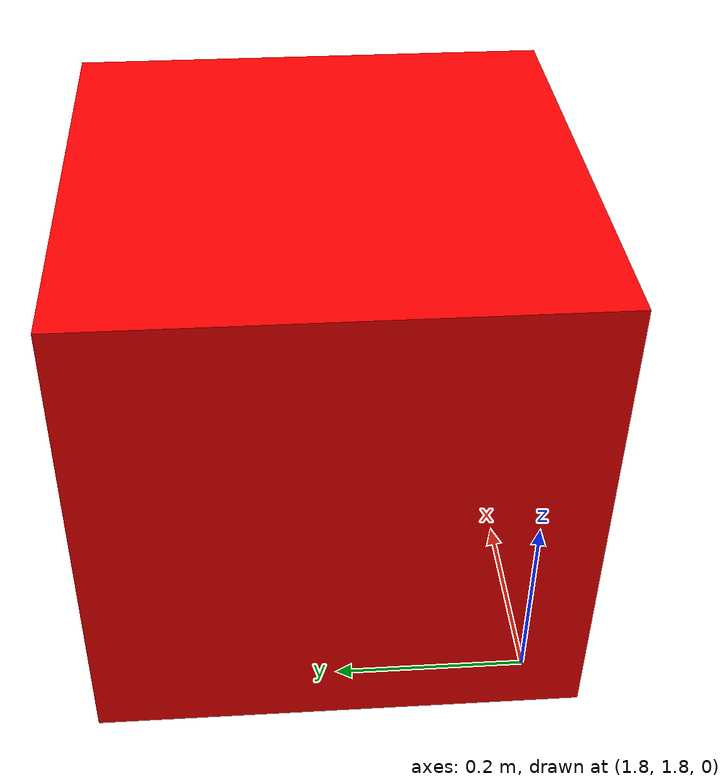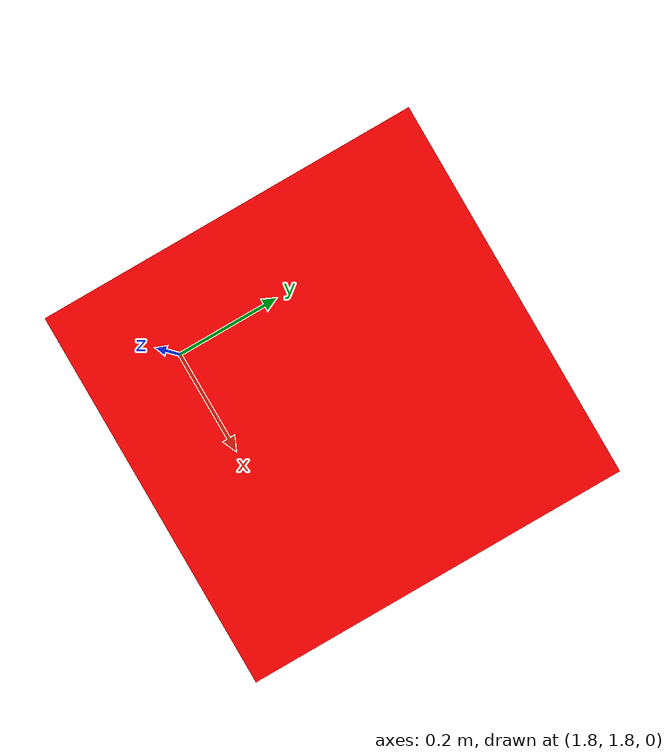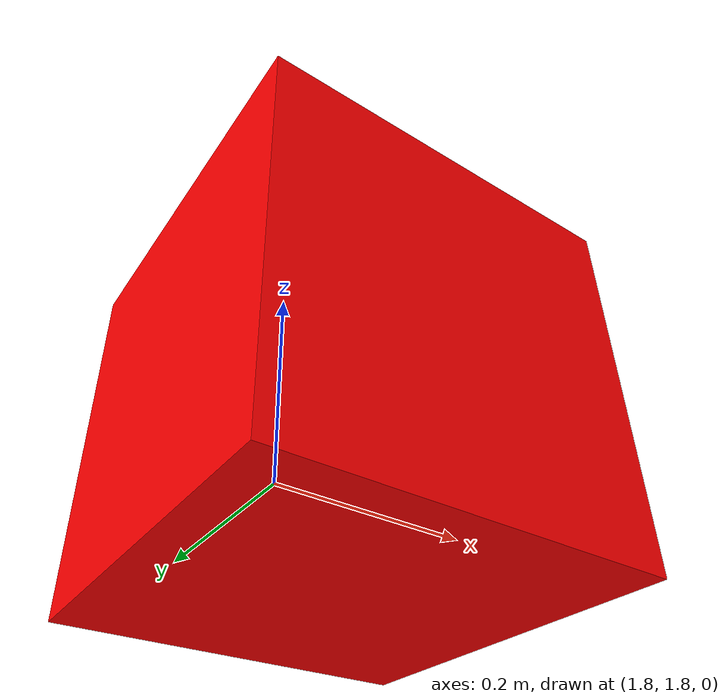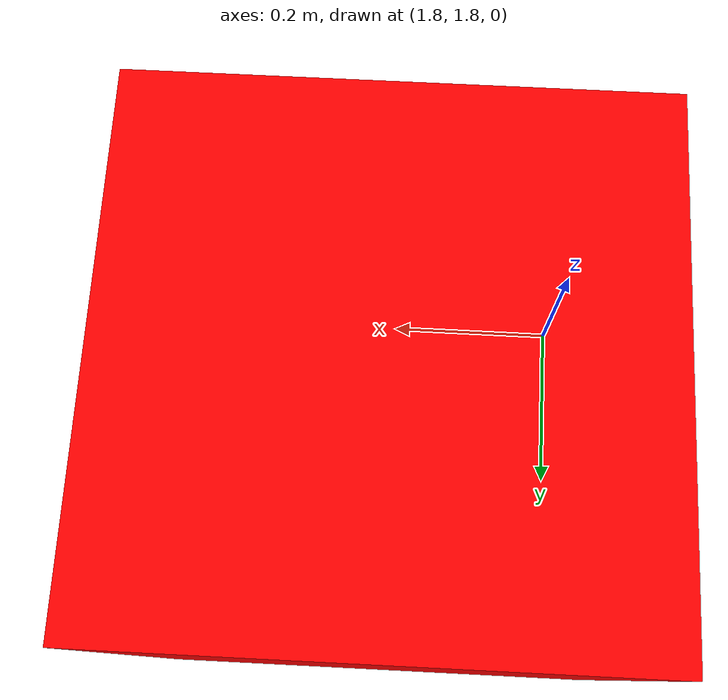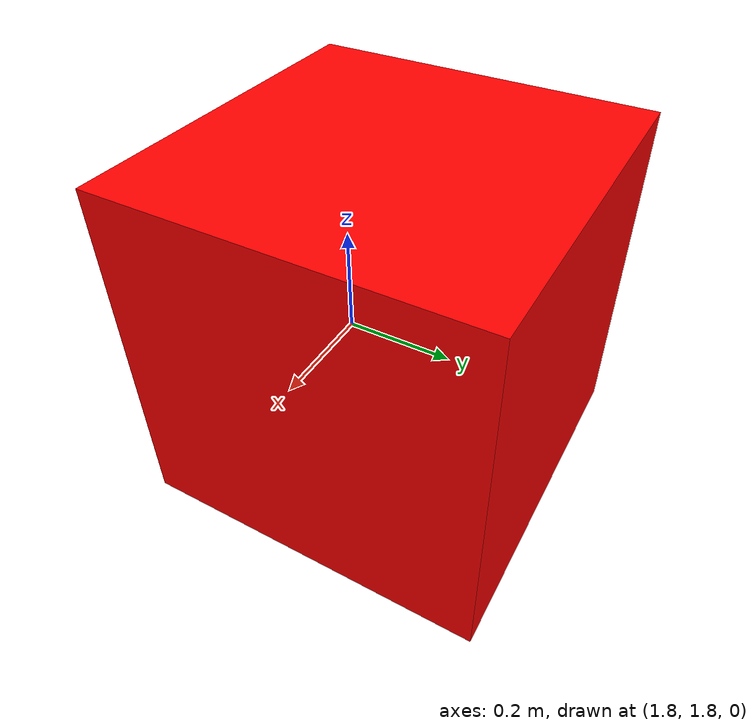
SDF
<sdf version='1.9'>
  <model name='boxy'>
    <link name='redbox'>
      <inertial>
        <pose>4 4 0.5 0 0 0</pose>
        <mass>1</mass>
        <inertia>
          <ixx>0</ixx>
          <ixy>0</ixy>
          <ixz>0</ixz>
          <iyy>0</iyy>
          <iyz>0</iyz>
          <izz>0</izz>
        </inertia>
      </inertial>
      <collision name='redbox_link_collision'>
        <pose>2 2 0.25 0 0 0</pose>
        <geometry>
          <box>
            <size>0.5 0.5 0.5</size>
          </box>
        </geometry>
      </collision>
      <visual name='redbox_link_visual'>
        <pose>2 2 0.25 0 0 0</pose>
        <geometry>
          <box>
            <size>0.5 0.5 0.5</size>
          </box>
        </geometry>
        <material>
          <diffuse>1 0 0 1</diffuse>
          <ambient>1 0 0 1</ambient>
        </material>
      </visual>
    </link>
    <frame name='redbox_joint' attached_to='redbox'>
      <pose>2 2 0.25 0 -0 0</pose>
    </frame>
    <frame name='redbox_link' attached_to='redbox_joint'/>
  </model>
</sdf>
